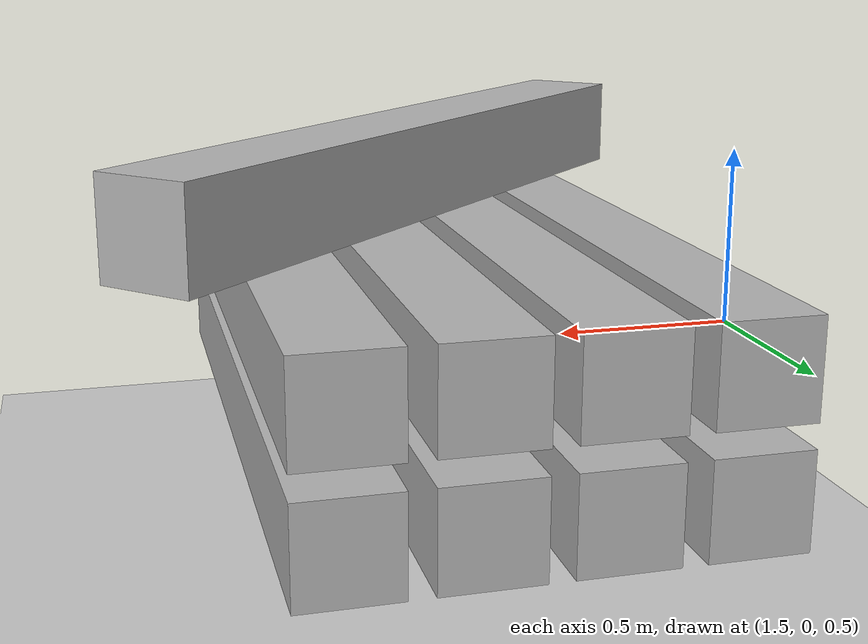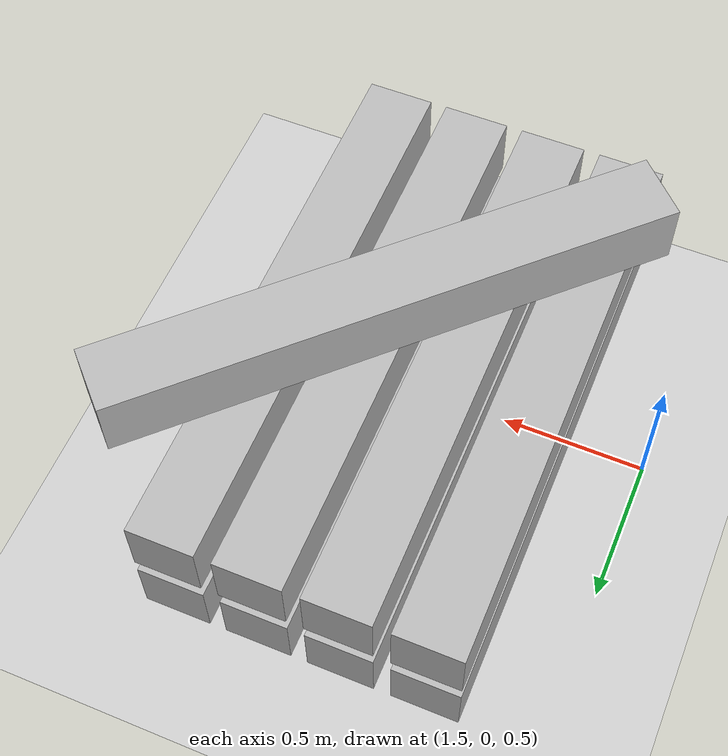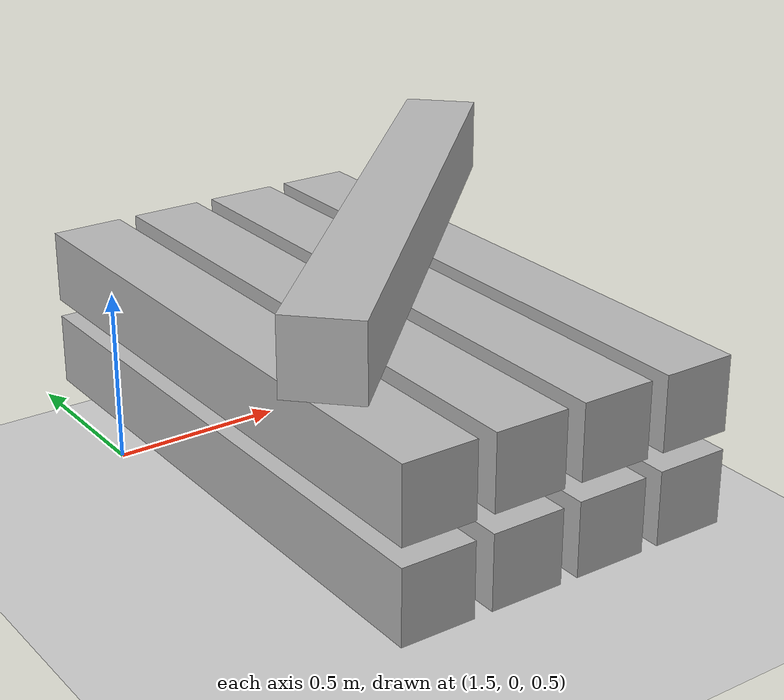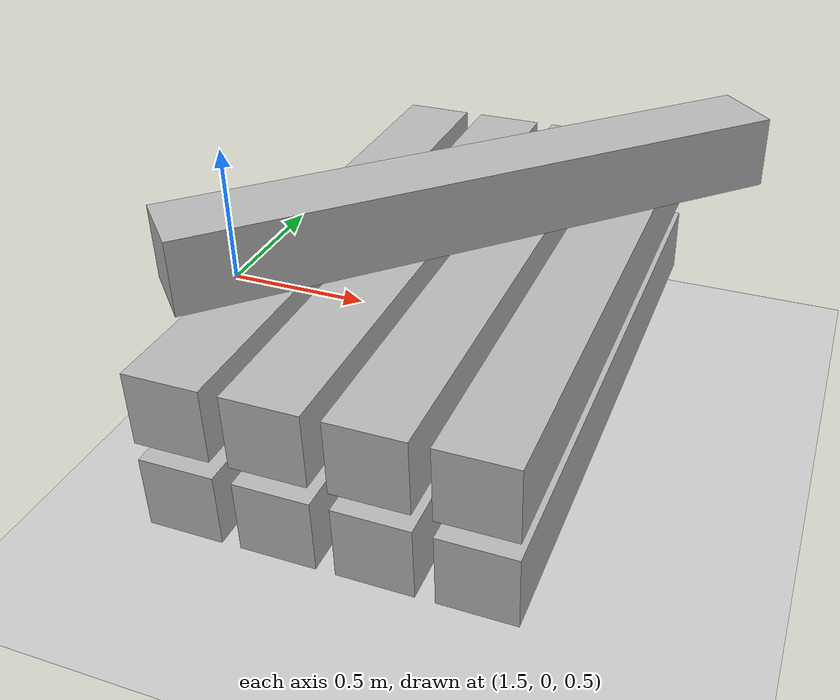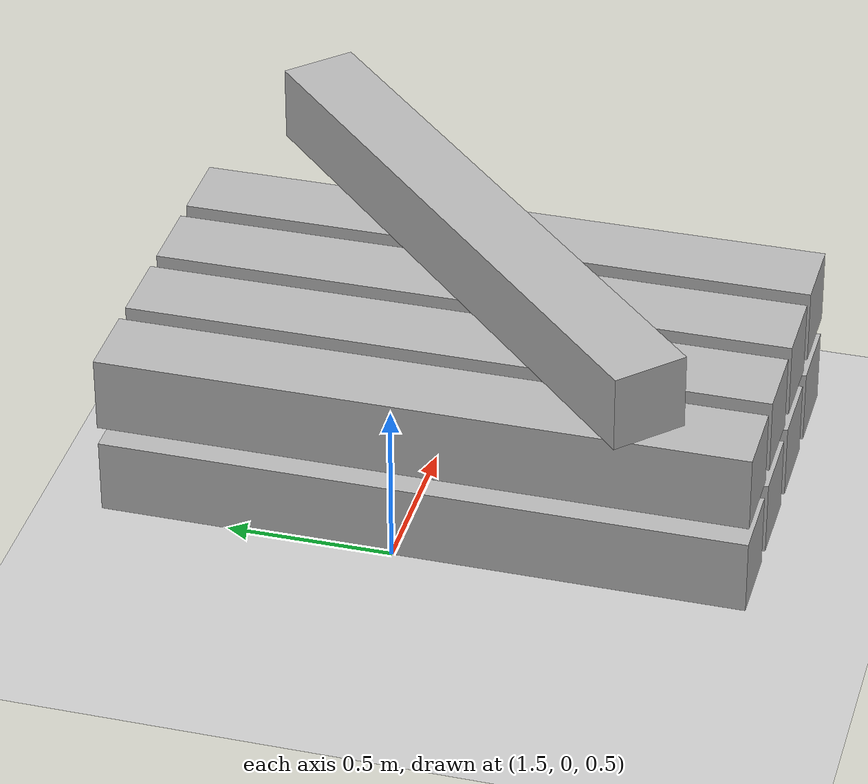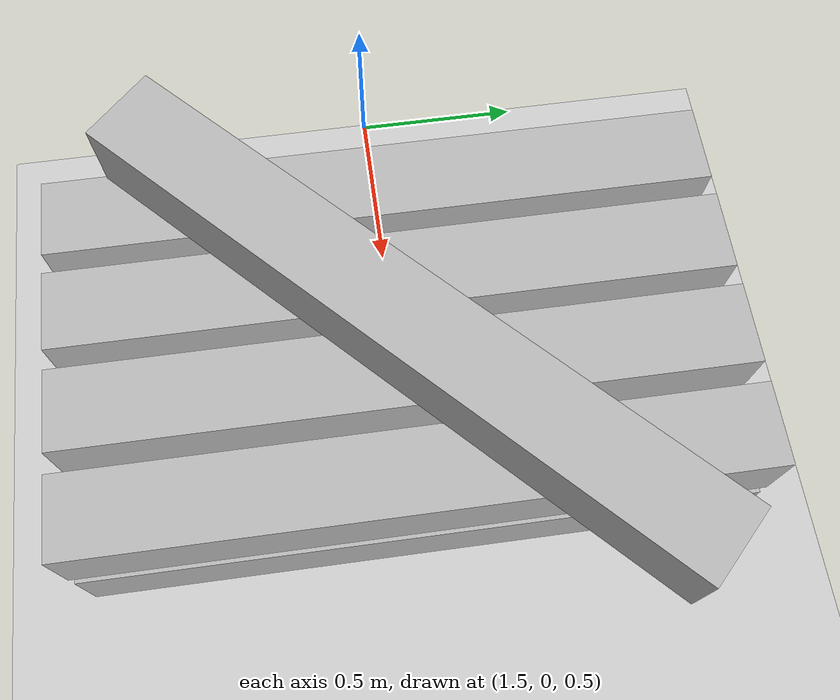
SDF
<sdf version="1.5">
 <world name="default">
  <include><uri>model://sun</uri></include>
  <include><uri>model://ground_plane</uri></include>
  <include><uri>model://asphalt_plane</uri></include>
  <include><uri>model://rockwool_24_24_200</uri><name>rock1_1</name><pose>1.9 0 0.40 0 0 1.57</pose></include>
  <include><uri>model://rockwool_24_24_200</uri><name>rock1_2</name><pose>2.2 0 0.40 0 0 1.57</pose></include>
  <include><uri>model://rockwool_24_24_200</uri><name>rock1_3</name><pose>2.5 0 0.40 0 0 1.57</pose></include>
  <include><uri>model://rockwool_24_24_200</uri><name>rock1_4</name><pose>2.8 0 0.40 0 0 1.57</pose></include>
  <include><uri>model://rockwool_24_24_200</uri><name>rock2_1</name><pose>1.9 0 0.70 0 0 1.57</pose></include>
  <include><uri>model://rockwool_24_24_200</uri><name>rock2_2</name><pose>2.2 0 0.70 0 0 1.57</pose></include>
  <include><uri>model://rockwool_24_24_200</uri><name>rock2_3</name><pose>2.5 0 0.70 0 0 1.57</pose></include>
  <include><uri>model://rockwool_24_24_200</uri><name>rock2_4</name><pose>2.8 0 0.70 0 0 1.57</pose></include>
  <include><uri>model://rockwool_24_24_200</uri><name>rock3_3</name><pose>2.45 0 1 0 0 0.78</pose></include>
  <scene><ambient>0.0 0.0 0.0 1.0</ambient><shadows>0</shadows></scene>
  <physics name="default_physics" default="0" type="ode">
   <gravity>0 0 -9.8066</gravity>
   <ode>
    <solver>
     <type>quick</type>
     <iters>10</iters>
     <sor>1.3</sor>
     <use_dynamic_moi_rescaling>0</use_dynamic_moi_rescaling>
    </solver>
    <constraints>
     <cfm>0</cfm>
     <erp>0.2</erp>
     <contact_max_correcting_vel>100</contact_max_correcting_vel>
     <contact_surface_layer>0.001</contact_surface_layer>
    </constraints>
   </ode>
   <max_step_size>0.002</max_step_size>
   <real_time_factor>1</real_time_factor>
   <real_time_update_rate>500</real_time_update_rate>
   <magnetic_field>6e-06 2.3e-05 -4.2e-05</magnetic_field>
  </physics>
 </world>
</sdf>

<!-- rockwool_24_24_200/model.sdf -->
<sdf version="1.5">
  <model name="Rockwool_24_24_200">
    <pose>0 0 0 0 0 0</pose>
    <link name="link">

    <inertial>
        <mass>1</mass>
        <inertia>
          <ixx>0.0096</ixx>
          <ixy>0</ixy>
          <ixz>0</ixz>
          <iyy>0.3381333333</iyy>
          <iyz>0</iyz>
          <izz>0.3381333333</izz>
        </inertia>
    </inertial>

    <collision name="collision">
    <pose>0 0 0 0 0 0</pose>
      <geometry>
          <box>
            <size>2 0.24 0.24</size>
          </box>
      </geometry>
      <surface>
        <friction>
          <ode>
            <mu>0.86</mu>
            <mu2>0.86</mu2>
          </ode>
        </friction>
        <contact>
          <ode>
            <max_vel>1</max_vel>
            <min_depth>0.01</min_depth>
          </ode>
        </contact>
      </surface>
    </collision>

    <visual name="visual">
      <geometry>
        <mesh>
          <uri>model://rockwool_24_24_200/meshes/model.dae</uri>
          <scale>0.5 0.5 0.5</scale>
        </mesh>
      </geometry>
    </visual>

  </link>
</model>

</sdf>
